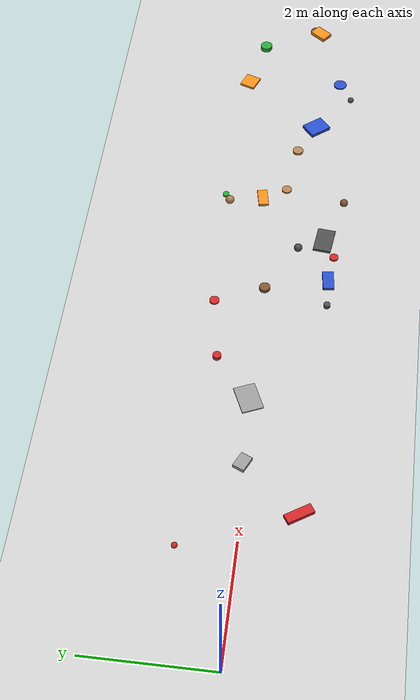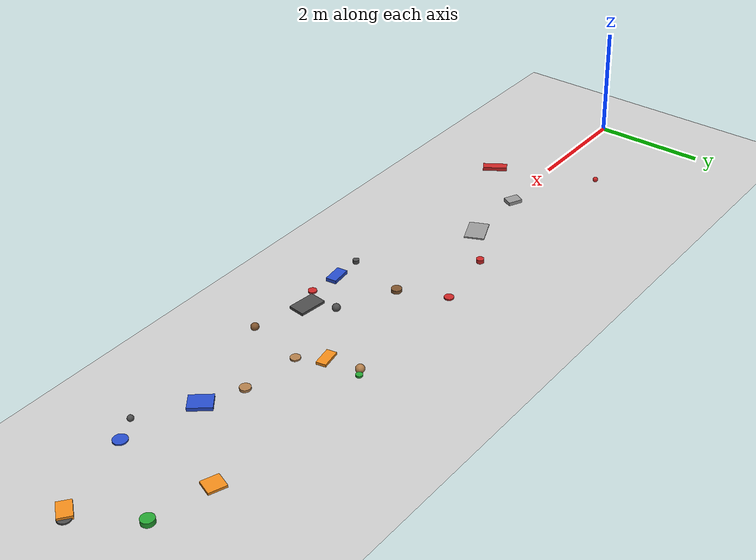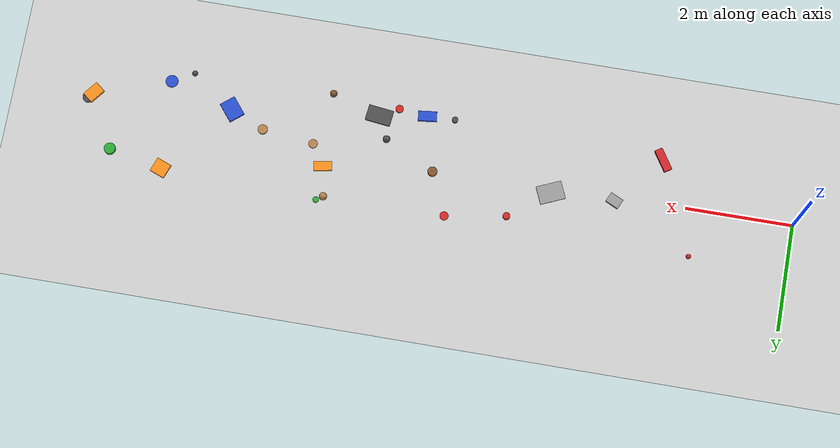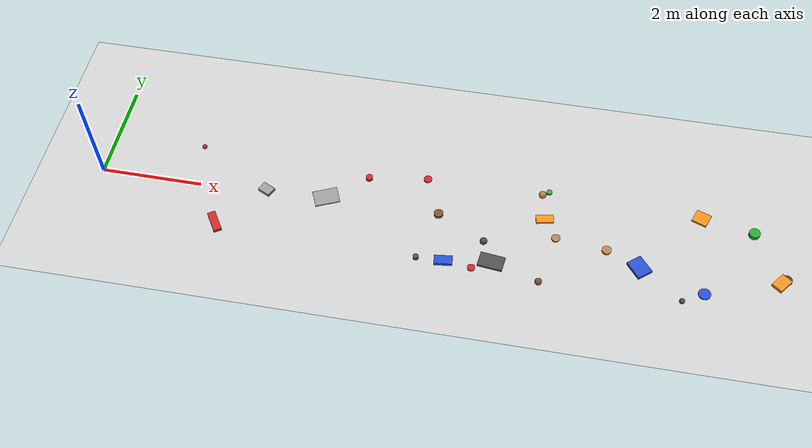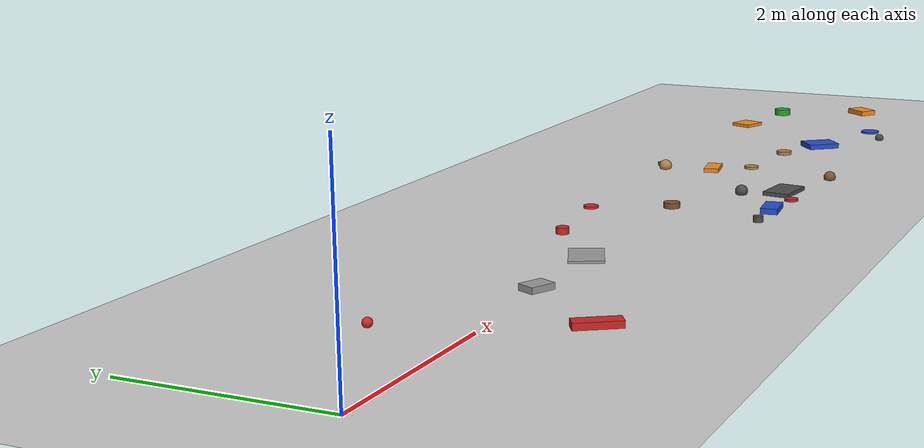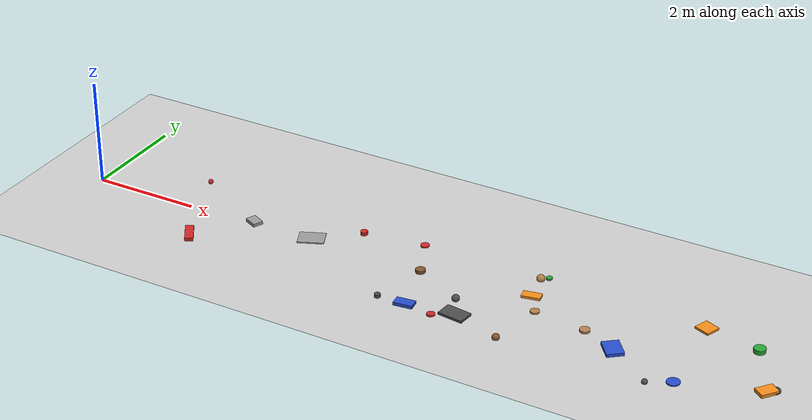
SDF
<?xml version="1.0" ?>
<!-- 由 omni_world.py 自动生成: scene=random seed=7 -->
<sdf version="1.5">
  <world name="random">
    <physics type="ode">
      <type>world</type>
      <max_step_size>0.001</max_step_size>
      <real_time_update_rate>1000</real_time_update_rate>
      <iters>500</iters>
    </physics>
    <include><uri>model://sun</uri></include>
    <include><uri>model://ground_plane</uri></include>
    <model name="r_cyl_0">
      <static>true</static>
      <pose>13.348 -0.252 0.012 0 0 0</pose>
      <link name="link">
        <collision name="collision">
          <geometry><cylinder><radius>0.107</radius><length>0.023</length></cylinder></geometry>
          <surface><friction><ode><mu>1.0</mu><mu2>1.0</mu2></ode></friction></surface>
        </collision>
        <visual name="visual">
          <geometry><cylinder><radius>0.107</radius><length>0.023</length></cylinder></geometry>
          <material><script><uri>file://media/materials/scripts/gazebo.material</uri>
            <name>Gazebo/DarkGrey</name></script></material>
        </visual>
      </link>
    </model>
    <model name="r_cyl_1">
      <static>true</static>
      <pose>8.785 0.983 0.018 0 0 0</pose>
      <link name="link">
        <collision name="collision">
          <geometry><cylinder><radius>0.056</radius><length>0.035</length></cylinder></geometry>
          <surface><friction><ode><mu>1.0</mu><mu2>1.0</mu2></ode></friction></surface>
        </collision>
        <visual name="visual">
          <geometry><cylinder><radius>0.056</radius><length>0.035</length></cylinder></geometry>
          <material><script><uri>file://media/materials/scripts/gazebo.material</uri>
            <name>Gazebo/Green</name></script></material>
        </visual>
      </link>
    </model>
    <model name="r_box_2">
      <static>true</static>
      <pose>4.508 0.123 0.012 0.0000 0.0000 1.9812</pose>
      <link name="link">
        <collision name="collision">
          <geometry><box><size>0.348 0.482 0.024</size></box></geometry>
          <surface><friction><ode><mu>1.0</mu><mu2>1.0</mu2></ode></friction></surface>
        </collision>
        <visual name="visual">
          <geometry><box><size>0.348 0.482 0.024</size></box></geometry>
          <material><script><uri>file://media/materials/scripts/gazebo.material</uri>
            <name>Gazebo/Grey</name></script></material>
        </visual>
      </link>
    </model>
    <model name="r_sph_3">
      <static>true</static>
      <pose>8.819 -1.081 0.018 0 0 0</pose>
      <link name="link">
        <collision name="collision">
          <geometry><sphere><radius>0.068</radius></sphere></geometry>
          <surface><friction><ode><mu>1.0</mu><mu2>1.0</mu2></ode></friction></surface>
        </collision>
        <visual name="visual">
          <geometry><sphere><radius>0.068</radius></sphere></geometry>
          <material><script><uri>file://media/materials/scripts/gazebo.material</uri>
            <name>Gazebo/Brown</name></script></material>
        </visual>
      </link>
    </model>
    <model name="r_cyl_4">
      <static>true</static>
      <pose>6.739 0.098 0.030 0 0 0</pose>
      <link name="link">
        <collision name="collision">
          <geometry><cylinder><radius>0.089</radius><length>0.060</length></cylinder></geometry>
          <surface><friction><ode><mu>1.0</mu><mu2>1.0</mu2></ode></friction></surface>
        </collision>
        <visual name="visual">
          <geometry><cylinder><radius>0.089</radius><length>0.060</length></cylinder></geometry>
          <material><script><uri>file://media/materials/scripts/gazebo.material</uri>
            <name>Gazebo/Brown</name></script></material>
        </visual>
      </link>
    </model>
    <model name="r_box_5">
      <static>true</static>
      <pose>8.770 0.333 0.023 0.0000 0.0000 0.1872</pose>
      <link name="link">
        <collision name="collision">
          <geometry><box><size>0.342 0.172 0.046</size></box></geometry>
          <surface><friction><ode><mu>1.0</mu><mu2>1.0</mu2></ode></friction></surface>
        </collision>
        <visual name="visual">
          <geometry><box><size>0.342 0.172 0.046</size></box></geometry>
          <material><script><uri>file://media/materials/scripts/gazebo.material</uri>
            <name>Gazebo/Orange</name></script></material>
        </visual>
      </link>
    </model>
    <model name="r_cyl_6">
      <static>true</static>
      <pose>10.005 -0.174 0.021 0 0 0</pose>
      <link name="link">
        <collision name="collision">
          <geometry><cylinder><radius>0.091</radius><length>0.042</length></cylinder></geometry>
          <surface><friction><ode><mu>1.0</mu><mu2>1.0</mu2></ode></friction></surface>
        </collision>
        <visual name="visual">
          <geometry><cylinder><radius>0.091</radius><length>0.042</length></cylinder></geometry>
          <material><script><uri>file://media/materials/scripts/gazebo.material</uri>
            <name>Gazebo/Wood</name></script></material>
        </visual>
      </link>
    </model>
    <model name="r_cyl_7">
      <static>true</static>
      <pose>5.247 0.707 0.034 0 0 0</pose>
      <link name="link">
        <collision name="collision">
          <geometry><cylinder><radius>0.067</radius><length>0.069</length></cylinder></geometry>
          <surface><friction><ode><mu>1.0</mu><mu2>1.0</mu2></ode></friction></surface>
        </collision>
        <visual name="visual">
          <geometry><cylinder><radius>0.067</radius><length>0.069</length></cylinder></geometry>
          <material><script><uri>file://media/materials/scripts/gazebo.material</uri>
            <name>Gazebo/Red</name></script></material>
        </visual>
      </link>
    </model>
    <model name="r_sph_8">
      <static>true</static>
      <pose>7.689 -0.376 0.026 0 0 0</pose>
      <link name="link">
        <collision name="collision">
          <geometry><sphere><radius>0.070</radius></sphere></geometry>
          <surface><friction><ode><mu>1.0</mu><mu2>1.0</mu2></ode></friction></surface>
        </collision>
        <visual name="visual">
          <geometry><sphere><radius>0.070</radius></sphere></geometry>
          <material><script><uri>file://media/materials/scripts/gazebo.material</uri>
            <name>Gazebo/DarkGrey</name></script></material>
        </visual>
      </link>
    </model>
    <model name="r_box_9">
      <static>true</static>
      <pose>7.899 -0.804 0.022 0.0000 0.0000 3.0223</pose>
      <link name="link">
        <collision name="collision">
          <geometry><box><size>0.477 0.298 0.044</size></box></geometry>
          <surface><friction><ode><mu>1.0</mu><mu2>1.0</mu2></ode></friction></surface>
        </collision>
        <visual name="visual">
          <geometry><box><size>0.477 0.298 0.044</size></box></geometry>
          <material><script><uri>file://media/materials/scripts/gazebo.material</uri>
            <name>Gazebo/DarkGrey</name></script></material>
        </visual>
      </link>
    </model>
    <model name="r_sph_10">
      <static>true</static>
      <pose>8.663 0.901 0.021 0 0 0</pose>
      <link name="link">
        <collision name="collision">
          <geometry><sphere><radius>0.075</radius></sphere></geometry>
          <surface><friction><ode><mu>1.0</mu><mu2>1.0</mu2></ode></friction></surface>
        </collision>
        <visual name="visual">
          <geometry><sphere><radius>0.075</radius></sphere></geometry>
          <material><script><uri>file://media/materials/scripts/gazebo.material</uri>
            <name>Gazebo/Wood</name></script></material>
        </visual>
      </link>
    </model>
    <model name="r_sph_11">
      <static>true</static>
      <pose>11.461 -1.035 0.013 0 0 0</pose>
      <link name="link">
        <collision name="collision">
          <geometry><sphere><radius>0.053</radius></sphere></geometry>
          <surface><friction><ode><mu>1.0</mu><mu2>1.0</mu2></ode></friction></surface>
        </collision>
        <visual name="visual">
          <geometry><sphere><radius>0.053</radius></sphere></geometry>
          <material><script><uri>file://media/materials/scripts/gazebo.material</uri>
            <name>Gazebo/DarkGrey</name></script></material>
        </visual>
      </link>
    </model>
    <model name="r_box_12">
      <static>true</static>
      <pose>10.639 -0.457 0.030 0.0000 0.0000 2.2514</pose>
      <link name="link">
        <collision name="collision">
          <geometry><box><size>0.388 0.306 0.060</size></box></geometry>
          <surface><friction><ode><mu>1.0</mu><mu2>1.0</mu2></ode></friction></surface>
        </collision>
        <visual name="visual">
          <geometry><box><size>0.388 0.306 0.060</size></box></geometry>
          <material><script><uri>file://media/materials/scripts/gazebo.material</uri>
            <name>Gazebo/Blue</name></script></material>
        </visual>
      </link>
    </model>
    <model name="r_box_13">
      <static>true</static>
      <pose>13.258 -0.347 0.031 0.0000 0.0000 0.9030</pose>
      <link name="link">
        <collision name="collision">
          <geometry><box><size>0.323 0.226 0.063</size></box></geometry>
          <surface><friction><ode><mu>1.0</mu><mu2>1.0</mu2></ode></friction></surface>
        </collision>
        <visual name="visual">
          <geometry><box><size>0.323 0.226 0.063</size></box></geometry>
          <material><script><uri>file://media/materials/scripts/gazebo.material</uri>
            <name>Gazebo/Orange</name></script></material>
        </visual>
      </link>
    </model>
    <model name="r_cyl_14">
      <static>true</static>
      <pose>6.387 0.891 0.013 0 0 0</pose>
      <link name="link">
        <collision name="collision">
          <geometry><cylinder><radius>0.081</radius><length>0.026</length></cylinder></geometry>
          <surface><friction><ode><mu>1.0</mu><mu2>1.0</mu2></ode></friction></surface>
        </collision>
        <visual name="visual">
          <geometry><cylinder><radius>0.081</radius><length>0.026</length></cylinder></geometry>
          <material><script><uri>file://media/materials/scripts/gazebo.material</uri>
            <name>Gazebo/Red</name></script></material>
        </visual>
      </link>
    </model>
    <model name="r_box_15">
      <static>true</static>
      <pose>11.741 0.874 0.020 0.0000 0.0000 2.7778</pose>
      <link name="link">
        <collision name="collision">
          <geometry><box><size>0.295 0.276 0.039</size></box></geometry>
          <surface><friction><ode><mu>1.0</mu><mu2>1.0</mu2></ode></friction></surface>
        </collision>
        <visual name="visual">
          <geometry><box><size>0.295 0.276 0.039</size></box></geometry>
          <material><script><uri>file://media/materials/scripts/gazebo.material</uri>
            <name>Gazebo/Orange</name></script></material>
        </visual>
      </link>
    </model>
    <model name="r_box_16">
      <static>true</static>
      <pose>2.537 -0.837 0.033 0.0000 0.0000 0.5728</pose>
      <link name="link">
        <collision name="collision">
          <geometry><box><size>0.154 0.441 0.066</size></box></geometry>
          <surface><friction><ode><mu>1.0</mu><mu2>1.0</mu2></ode></friction></surface>
        </collision>
        <visual name="visual">
          <geometry><box><size>0.154 0.441 0.066</size></box></geometry>
          <material><script><uri>file://media/materials/scripts/gazebo.material</uri>
            <name>Gazebo/Red</name></script></material>
        </visual>
      </link>
    </model>
    <model name="r_box_17">
      <static>true</static>
      <pose>3.321 0.083 0.031 0.0000 0.0000 2.6993</pose>
      <link name="link">
        <collision name="collision">
          <geometry><box><size>0.262 0.194 0.063</size></box></geometry>
          <surface><friction><ode><mu>1.0</mu><mu2>1.0</mu2></ode></friction></surface>
        </collision>
        <visual name="visual">
          <geometry><box><size>0.262 0.194 0.063</size></box></geometry>
          <material><script><uri>file://media/materials/scripts/gazebo.material</uri>
            <name>Gazebo/Grey</name></script></material>
        </visual>
      </link>
    </model>
    <model name="r_cyl_18">
      <static>true</static>
      <pose>12.744 0.672 0.041 0 0 0</pose>
      <link name="link">
        <collision name="collision">
          <geometry><cylinder><radius>0.106</radius><length>0.081</length></cylinder></geometry>
          <surface><friction><ode><mu>1.0</mu><mu2>1.0</mu2></ode></friction></surface>
        </collision>
        <visual name="visual">
          <geometry><cylinder><radius>0.106</radius><length>0.081</length></cylinder></geometry>
          <material><script><uri>file://media/materials/scripts/gazebo.material</uri>
            <name>Gazebo/Green</name></script></material>
        </visual>
      </link>
    </model>
    <model name="r_cyl_19">
      <static>true</static>
      <pose>6.487 -0.952 0.032 0 0 0</pose>
      <link name="link">
        <collision name="collision">
          <geometry><cylinder><radius>0.054</radius><length>0.064</length></cylinder></geometry>
          <surface><friction><ode><mu>1.0</mu><mu2>1.0</mu2></ode></friction></surface>
        </collision>
        <visual name="visual">
          <geometry><cylinder><radius>0.054</radius><length>0.064</length></cylinder></geometry>
          <material><script><uri>file://media/materials/scripts/gazebo.material</uri>
            <name>Gazebo/DarkGrey</name></script></material>
        </visual>
      </link>
    </model>
    <model name="r_box_20">
      <static>true</static>
      <pose>7.008 -0.936 0.031 0.0000 0.0000 1.6858</pose>
      <link name="link">
        <collision name="collision">
          <geometry><box><size>0.186 0.348 0.062</size></box></geometry>
          <surface><friction><ode><mu>1.0</mu><mu2>1.0</mu2></ode></friction></surface>
        </collision>
        <visual name="visual">
          <geometry><box><size>0.186 0.348 0.062</size></box></geometry>
          <material><script><uri>file://media/materials/scripts/gazebo.material</uri>
            <name>Gazebo/Blue</name></script></material>
        </visual>
      </link>
    </model>
    <model name="r_sph_21">
      <static>true</static>
      <pose>1.819 0.898 0.031 0 0 0</pose>
      <link name="link">
        <collision name="collision">
          <geometry><sphere><radius>0.047</radius></sphere></geometry>
          <surface><friction><ode><mu>1.0</mu><mu2>1.0</mu2></ode></friction></surface>
        </collision>
        <visual name="visual">
          <geometry><sphere><radius>0.047</radius></sphere></geometry>
          <material><script><uri>file://media/materials/scripts/gazebo.material</uri>
            <name>Gazebo/Red</name></script></material>
        </visual>
      </link>
    </model>
    <model name="r_cyl_22">
      <static>true</static>
      <pose>9.028 -0.062 0.014 0 0 0</pose>
      <link name="link">
        <collision name="collision">
          <geometry><cylinder><radius>0.084</radius><length>0.028</length></cylinder></geometry>
          <surface><friction><ode><mu>1.0</mu><mu2>1.0</mu2></ode></friction></surface>
        </collision>
        <visual name="visual">
          <geometry><cylinder><radius>0.084</radius><length>0.028</length></cylinder></geometry>
          <material><script><uri>file://media/materials/scripts/gazebo.material</uri>
            <name>Gazebo/Wood</name></script></material>
        </visual>
      </link>
    </model>
    <model name="r_cyl_23">
      <static>true</static>
      <pose>7.548 -0.994 0.014 0 0 0</pose>
      <link name="link">
        <collision name="collision">
          <geometry><cylinder><radius>0.074</radius><length>0.027</length></cylinder></geometry>
          <surface><friction><ode><mu>1.0</mu><mu2>1.0</mu2></ode></friction></surface>
        </collision>
        <visual name="visual">
          <geometry><cylinder><radius>0.074</radius><length>0.027</length></cylinder></geometry>
          <material><script><uri>file://media/materials/scripts/gazebo.material</uri>
            <name>Gazebo/Red</name></script></material>
        </visual>
      </link>
    </model>
    <model name="r_cyl_24">
      <static>true</static>
      <pose>11.861 -0.813 0.011 0 0 0</pose>
      <link name="link">
        <collision name="collision">
          <geometry><cylinder><radius>0.117</radius><length>0.022</length></cylinder></geometry>
          <surface><friction><ode><mu>1.0</mu><mu2>1.0</mu2></ode></friction></surface>
        </collision>
        <visual name="visual">
          <geometry><cylinder><radius>0.117</radius><length>0.022</length></cylinder></geometry>
          <material><script><uri>file://media/materials/scripts/gazebo.material</uri>
            <name>Gazebo/Blue</name></script></material>
        </visual>
      </link>
    </model>

  </world>
</sdf>
